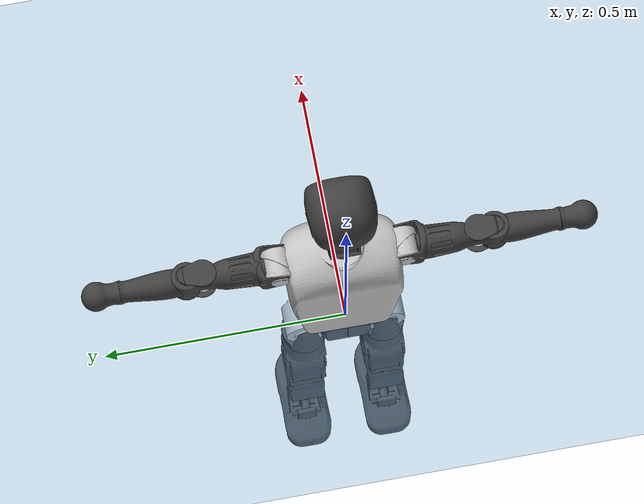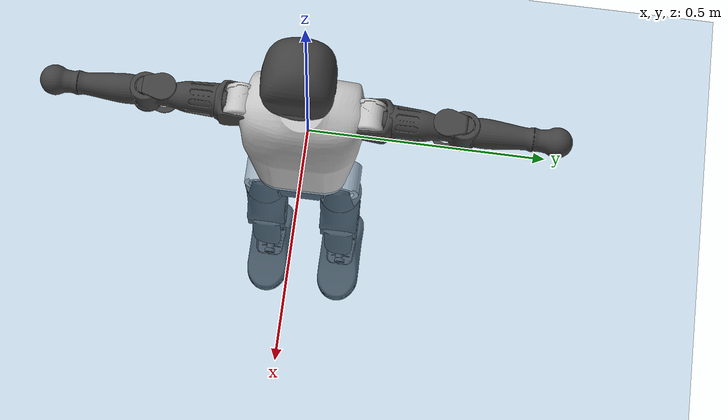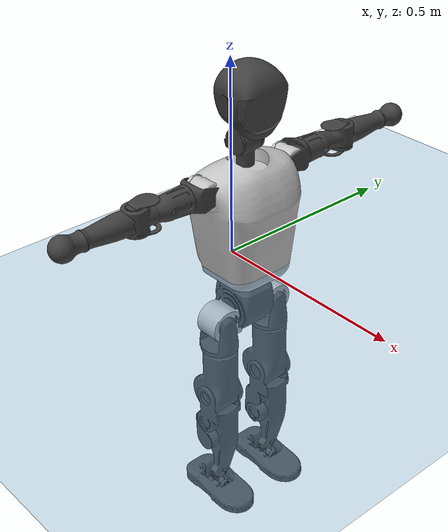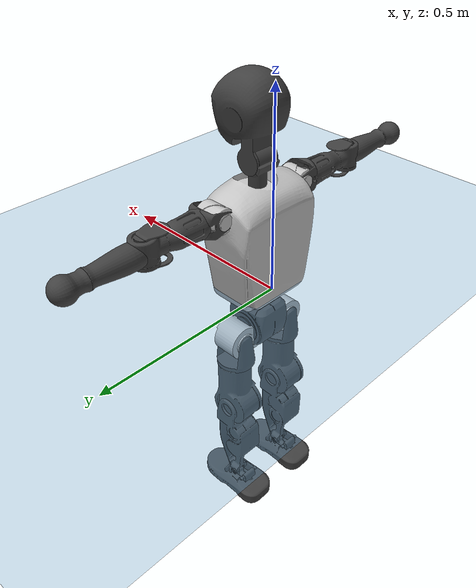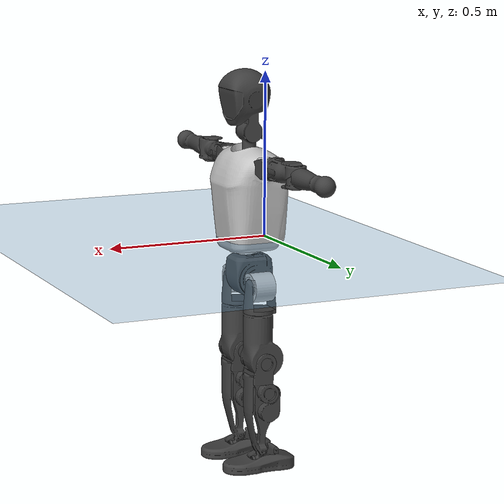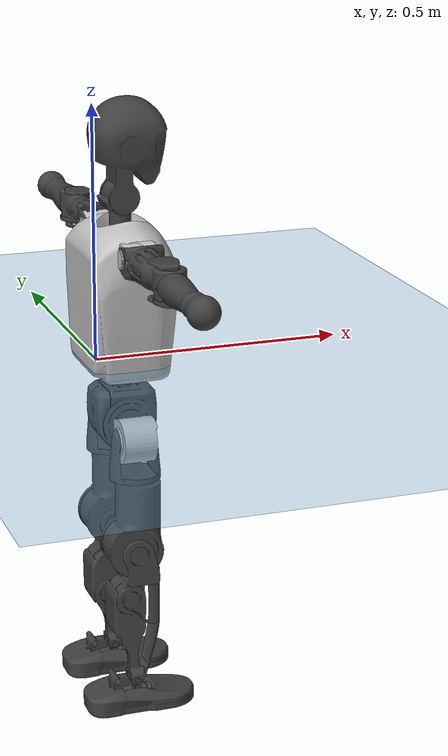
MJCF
<mujoco model="T1">
  <compiler angle="radian" assetdir="assets" balanceinertia="true" inertiafromgeom="false"/>

  <option timestep="0.005" density="1.2" viscosity="2e-05"/>

  <size nkey="1"/>

  <visual>
    <quality shadowsize="8192"/>
    <map shadowclip="0.5"/>
  </visual>

  <default>
    <default class="/">
      <joint armature="0.01" damping="0.01" frictionloss="0.1"/>
      <geom contype="0" conaffinity="0" group="1" solref="-1000 -80"/>
      <site size="0.01 0.005 0.005" group="5"/>
      <general forcelimited="true" biastype="affine" gainprm="25" biasprm="0 -25 -0.6"/>
      <default class="t1">
        <geom rgba="0.25 0.25 0.25 1"/>
        <default class="visual">
          <geom type="mesh" group="2"/>
        </default>
        <default class="collision">
          <geom group="3"/>
        </default>
        <default class="foot">
          <geom size="0.1115 0.05 0.015" type="box" condim="6" group="4" priority="1" solimp="0.015 1 0.015"/>
        </default>
        <default class="reward_collision_sphere">
          <geom group="5" rgba="1 0 0 1"/>
        </default>
      </default>
    </default>
  </default>

  <asset>
    <texture type="skybox" colorspace="auto" name="//unnamed_texture_0" builtin="gradient" rgb1="0.95 0.95 0.95" rgb2="0.95 0.95 0.95" width="100" height="600"/>
    <texture type="2d" colorspace="auto" name="texplane" builtin="checker" rgb1="0.345 0.575 0.748" rgb2="0.345 0.575 0.748" markrgb="1 1 1" width="512" height="512"/>
    <material name="MatPlane" class="/" texture="texplane" texuniform="true" texrepeat="2 2" specular="0.9"/>
    <mesh name="Trunk" class="/" file="Trunk.stl"/>
    <mesh name="H1" class="/" file="H1.stl"/>
    <mesh name="H2" class="/" file="H2.stl"/>
    <mesh name="AL1" class="/" file="AL1.stl"/>
    <mesh name="AL2" class="/" file="AL2.stl"/>
    <mesh name="AL3" class="/" file="AL3.stl"/>
    <mesh name="left_hand_link" class="/" file="left_hand_link.stl"/>
    <mesh name="AR1" class="/" file="AR1.stl"/>
    <mesh name="AR2" class="/" file="AR2.stl"/>
    <mesh name="AR3" class="/" file="AR3.stl"/>
    <mesh name="right_hand_link" class="/" file="right_hand_link.stl"/>
    <mesh name="Waist" class="/" file="Waist.stl"/>
    <mesh name="Hip_Pitch_Left" class="/" file="Hip_Pitch_Left.stl"/>
    <mesh name="Hip_Roll_Left" class="/" file="Hip_Roll_Left.stl"/>
    <mesh name="Hip_Yaw_Left" class="/" file="Hip_Yaw_Left.stl"/>
    <mesh name="Shank_Left" class="/" file="Shank_Left.stl"/>
    <mesh name="Ankle_Cross_Left" class="/" file="Ankle_Cross_Left.stl"/>
    <mesh name="left_foot_link" class="/" file="left_foot_link.stl"/>
    <mesh name="Hip_Pitch_Right" class="/" file="Hip_Pitch_Right.stl"/>
    <mesh name="Hip_Roll_Right" class="/" file="Hip_Roll_Right.stl"/>
    <mesh name="Hip_Yaw_Right" class="/" file="Hip_Yaw_Right.stl"/>
    <mesh name="Shank_Right" class="/" file="Shank_Right.stl"/>
    <mesh name="Ankle_Cross_Right" class="/" file="Ankle_Cross_Right.stl"/>
    <mesh name="right_foot_link" class="/" file="right_foot_link.stl"/>
  </asset>

  <worldbody>
    <geom name="floor" class="/" size="100 100 0.125" type="plane" group="0" material="MatPlane"/>
    <light name="toplight_shadow" class="/" pos="0 0 5" dir="0.0990148 0.0990148 -0.990148" type="directional" ambient="0.04 0.04 0.04" diffuse="0.55 0.55 0.55" specular="0.12 0.12 0.12"/>
    <light name="toplight_fill" class="/" pos="0 0 5" dir="0.0990148 0.0990148 -0.990148" type="directional" castshadow="false" ambient="0.04 0.04 0.04" diffuse="0.3 0.3 0.3" specular="0.08 0.08 0.08"/>
    <body name="trunk" childclass="t1" pos="6.77047e-05 -0.00100834 0.00213789" quat="1 2.14163e-05 -2.80791e-06 -0.000121476">
      <inertial pos="0.0464208 -0.00283927 0.111204" quat="0.999919 -0.00114271 -0.0114472 -0.00547365" mass="8.16858" diaginertia="0.0368342 0.0215323 0.0739829"/>
      <joint name="//unnamed_joint_0" type="free" armature="0" damping="0" frictionloss="0"/>
      <geom name="//unnamed_geom_1" class="visual" rgba="0.76 0.76 0.76 1" mesh="Trunk"/>
      <geom name="//unnamed_geom_2" class="collision" size="0.0666125 0.0888167 0.133225" pos="0.0498712 0 0.126874" type="box"/>
      <geom name="//unnamed_geom_3" class="reward_collision_sphere" size="0.102139" pos="0.0498712 0 0.105728"/>
      <geom name="//unnamed_geom_4" class="reward_collision_sphere" size="0.0133225" pos="0.0498712 0.0659628 0"/>
      <geom name="//unnamed_geom_5" class="reward_collision_sphere" size="0.0133225" pos="0.0498712 -0.0659628 0"/>
      <geom name="//unnamed_geom_6" class="reward_collision_sphere" size="0.0133225" pos="0.0498712 0.0830356 0.19031"/>
      <geom name="//unnamed_geom_7" class="reward_collision_sphere" size="0.0133225" pos="0.0498712 -0.0830356 0.19031"/>
      <site name="imu" pos="-0.000436343 0.0128716 0.000898131" size="0.00888167"/>
      <camera name="track" pos="0 -1.55207 0" quat="0.707107 0.707107 0 0" mode="trackcom"/>
      <camera name="ego_camera" pos="0.101405 0 0.444058" quat="-0.5 -0.5 0.5 0.5"/>
      <body name="H1" pos="0.0516749 -0.00161323 0.257222" quat="0.999999 0.00111871 0.000498404 -0.000152558">
        <inertial pos="-0.00170028 -0.000171653 0.0605458" quat="0.763531 -0.0155659 -0.00100308 0.645583" mass="0.304336" diaginertia="9.60341e-05 6.3913e-05 0.000202708"/>
        <joint name="AAHead_yaw" pos="0 0 0" axis="0.00226329 -0.00154349 0.999996" range="-1.57278 1.62365" armature="0.00868158" damping="0" frictionloss="0.0824523"/>
        <geom name="//unnamed_geom_8" class="visual" mesh="H1"/>
        <body name="H2" pos="-0.000248116 0.000263577 0.0626889" quat="0.999999 0.000519854 0.000984347 0.000682678">
          <inertial pos="0.00548435 0.00178016 0.106276" quat="0.988508 0.102162 -0.0733516 -0.0838668" mass="0.441494" diaginertia="0.000807205 0.000540708 0.00223767"/>
          <joint name="Head_pitch" pos="0 0 0" axis="0.00984408 -0.999951 -0.00109055" range="-1.24425 0.357458" armature="0.00917277" damping="0.00472442" frictionloss="0.0911212"/>
          <geom name="//unnamed_geom_9" class="visual" mesh="H2"/>
          <geom name="//unnamed_geom_10" class="collision" size="0.0710534" pos="0.00831187 0 0.116301"/>
          <geom name="//unnamed_geom_11" class="reward_collision_sphere" size="0.079935" pos="0.0166237 0 0.105728"/>
        </body>
      </body>
      <body name="AL1" pos="0.0494708 0.0845456 0.23033" quat="1 5.01363e-05 0.000449813 -0.000330533">
        <inertial pos="-0.00144047 0.0335937 0.000124146" quat="0.506269 0.504494 -0.494506 0.494613" mass="0.362832" diaginertia="0.00052641 0.000353932 0.00037475"/>
        <joint name="Left_Shoulder_Pitch" pos="0 0 0" axis="-0.00185036 0.999975 -0.0068162" range="-3.25321 1.21365" armature="0.00801298" damping="0.00341319" frictionloss="0.0878363"/>
        <geom name="//unnamed_geom_12" class="visual" rgba="0.76 0.76 0.76 1" mesh="AL1"/>
        <body name="AL2" pos="0.00170051 0.0383082 0.0001375" quat="0.999999 -0.00048552 -0.000441205 -0.00111152">
          <inertial pos="0.00593206 0.0301998 -0.000340721" quat="0.490902 0.509024 -0.487147 0.512442" mass="0.107665" diaginertia="0.000153124 9.39846e-05 0.000223011"/>
          <joint name="Left_Shoulder_Roll" pos="0 0 0" axis="-0.999999 0.000842191 0.000962657" range="-1.57448 1.76075" armature="0.00960852" damping="0.0172762" frictionloss="0.0909539"/>
          <geom name="//unnamed_geom_13" class="visual" mesh="AL2"/>
          <body name="AL3" pos="-0.000262884 0.0472536 0.000600396" quat="0.999999 0.000447664 -0.00115544 0.000389775">
            <inertial pos="0.00238408 0.0652286 -8.76491e-05" quat="0.715094 0.699012 -0.00239245 0.00404663" mass="0.739031" diaginertia="0.00533544 0.0038423 0.000851446"/>
            <joint name="Left_Elbow_Pitch" pos="0 0 0" axis="0.00409816 -0.99999 0.00188557" range="-2.28083 2.32252" armature="0.00994838" damping="0.00927442" frictionloss="0.100769"/>
            <geom name="//unnamed_geom_14" class="visual" mesh="AL3"/>
            <geom name="//unnamed_geom_15" class="collision" size="0.026645 0.0666125" pos="0 0.0388017 0" quat="0.707105 0.707108 0 0" type="cylinder"/>
            <geom name="//unnamed_geom_16" class="reward_collision_sphere" size="0.031974"/>
            <body name="left_hand_link" pos="-0.00034043 0.114123 -0.000336209" quat="0.999999 0.000868645 0.000692462 -0.000723031">
              <inertial pos="0.00128386 0.087059 0.000844977" quat="0.710866 0.70332 -2.40323e-05 -0.00337774" mass="0.226573" diaginertia="0.00333269 0.00234223 0.000273846"/>
              <joint name="Left_Elbow_Yaw" pos="0 0 0" axis="0.00868948 -0.0115238 0.999896" range="-2.45236 0.0545286" armature="0.00790034" damping="0.000257413" frictionloss="0.0917993"/>
              <geom name="//unnamed_geom_17" class="visual" mesh="left_hand_link"/>
              <geom name="//unnamed_geom_18" class="collision" size="0.026645 0.0777146" pos="0 0.100884 0" quat="0.707105 0.707108 0 0" type="cylinder"/>
              <geom name="//unnamed_geom_19" class="reward_collision_sphere" size="0.0444084"/>
              <geom name="//unnamed_geom_20" class="reward_collision_sphere" size="0.0310858" pos="0 0.0853637 0"/>
              <geom name="//unnamed_geom_21" class="reward_collision_sphere" size="0.0310858" pos="0 0.166847 0"/>
            </body>
          </body>
        </body>
      </body>
      <body name="AR1" pos="0.0483711 -0.0786494 0.228415" quat="1 9.51065e-05 0.000670104 0.000189501">
        <inertial pos="-0.00152257 -0.037718 0.000583638" quat="0.507722 0.493694 -0.504886 0.493534" mass="0.375085" diaginertia="0.000538058 0.00036104 0.000383604"/>
        <joint name="Right_Shoulder_Pitch" pos="0 0 0" axis="-0.0111786 -0.999893 0.00943158" range="-1.22682 3.36343" armature="0.00934427" damping="0.00810348" frictionloss="0.0767596"/>
        <geom name="//unnamed_geom_22" class="visual" rgba="0.76 0.76 0.76 1" mesh="AR1"/>
        <body name="AR2" pos="0.00221404 -0.0376489 -0.00104911" quat="1 -3.60611e-05 0.000106191 -0.000111858">
          <inertial pos="0.00535493 -0.0297621 -0.000451323" quat="0.511522 0.490806 -0.510288 0.486889" mass="0.119783" diaginertia="0.000164954 9.96489e-05 0.000240126"/>
          <joint name="Right_Shoulder_Roll" pos="0 0 0" axis="-0.999998 -0.000574917 0.00199534" range="-1.7384 1.61249" armature="0.00927962" damping="0" frictionloss="0.0993195"/>
          <geom name="//unnamed_geom_23" class="visual" mesh="AR2"/>
          <body name="AR3" pos="-0.00288564 -0.0484536 -0.001836" quat="1 -0.000237696 4.52997e-05 -3.63247e-05">
            <inertial pos="-0.00012696 -0.064139 0.000612581" quat="0.707523 0.70669 -0.00035871 0.000146811" mass="0.757624" diaginertia="0.00526916 0.00372555 0.000849595"/>
            <joint name="Right_Elbow_Pitch" pos="0 0 0" axis="0.00233367 0.999997 -0.000616488" range="-2.31581 2.2184" armature="0.00872862" damping="0.0159412" frictionloss="0.0902738"/>
            <geom name="//unnamed_geom_24" class="visual" mesh="AR3"/>
            <geom name="//unnamed_geom_25" class="collision" size="0.026645 0.0666125" pos="0 -0.0388017 0" quat="0.707105 0.707108 0 0" type="cylinder"/>
            <geom name="//unnamed_geom_26" class="reward_collision_sphere" size="0.031974"/>
            <body name="right_hand_link" pos="-0.00106562 -0.113586 0.00119916" quat="1 -0.000291197 0.000247344 -1.64209e-05">
              <inertial pos="5.38991e-05 -0.0846321 -0.00160296" quat="0.711056 0.703127 0.00107145 -0.00326167" mass="0.217495" diaginertia="0.00315423 0.00226901 0.000280199"/>
              <joint name="Right_Elbow_Yaw" pos="0 0 0" axis="-0.0118393 -0.00524064 0.999916" stiffness="0.000959652" range="-0.00888019 2.48849" armature="0.00910968" damping="0.00722222" frictionloss="0.0891672"/>
              <geom name="//unnamed_geom_27" class="visual" mesh="right_hand_link"/>
              <geom name="//unnamed_geom_28" class="collision" size="0.026645 0.0777146" pos="0 -0.100884 0" quat="0.707105 0.707108 0 0" type="cylinder"/>
              <geom name="//unnamed_geom_29" class="reward_collision_sphere" size="0.0444084"/>
              <geom name="//unnamed_geom_30" class="reward_collision_sphere" size="0.0310858" pos="0 -0.0853637 0"/>
              <geom name="//unnamed_geom_31" class="reward_collision_sphere" size="0.0310858" pos="0 -0.166847 0"/>
            </body>
          </body>
        </body>
      </body>
      <body name="Waist" pos="0.0496593 -0.00264344 -0.122934" quat="0.999999 -0.000677028 0.000695455 0.000816003">
        <inertial pos="0.00086511 -0.00332714 0.0067974" quat="0.983639 0.000519003 -0.180134 0.00242423" mass="1.79597" diaginertia="0.00207311 0.00144133 0.00609496"/>
        <joint name="Waist" pos="0 0 0" axis="0.00626038 -0.0058658 0.999963" stiffness="0.00169948" range="-1.58119 1.56355" armature="0.00848956" damping="0" frictionloss="0.0768385"/>
        <geom name="//unnamed_geom_32" class="visual" mesh="Waist"/>
        <body name="Hip_Pitch_Left" pos="0.00158962 0.0800287 0.00215315" quat="0.999999 0.0011509 2.49736e-06 -0.000885189">
          <inertial pos="0.0011847 -0.00507848 -0.0191989" quat="0.975104 0.221433 0.011713 0.00162576" mass="0.712997" diaginertia="0.000722116 0.000422377 0.0016401"/>
          <joint name="Left_Hip_Pitch" pos="0 0 0" axis="0.00146293 0.999975 -0.00688896" range="-1.7818 1.55648" armature="0.00932193" damping="0.0111006" frictionloss="0.0875516"/>
          <geom name="//unnamed_geom_33" class="visual" rgba="0.76 0.76 0.76 1" mesh="Hip_Pitch_Left"/>
          <body name="Hip_Roll_Left" pos="0.0026094 0.000991167 -0.0201652" quat="0.999999 0.00086048 -0.0009755 0.000193578">
            <inertial pos="-0.00147744 -0.00264451 -0.0578796" quat="0.704349 -0.0165598 0.00124829 0.70966" mass="0.267496" diaginertia="0.000661579 0.000417284 0.00067751"/>
            <joint name="Left_Hip_Roll" pos="0 0 0" axis="-0.999928 -0.0119101 -0.00133916" range="-1.60857 0.255303" armature="0.00998094" damping="0.00613952" frictionloss="0.0885446"/>
            <geom name="//unnamed_geom_34" class="visual" mesh="Hip_Roll_Left"/>
            <geom name="//unnamed_geom_35" class="reward_collision_sphere" size="0.0488492"/>
            <body name="Hip_Yaw_Left" pos="0.0024296 -0.000143676 -0.0847249" quat="0.999999 0.000704369 -0.00123946 -0.000535754">
              <inertial pos="-0.00665109 0.000235966 -0.0952144" quat="0.698391 -0.0352554 -0.0278482 0.714305" mass="1.53082" diaginertia="0.0101172 0.00722735 0.00356408"/>
              <joint name="Left_Hip_Yaw" pos="0 0 0" axis="-0.000548015 0.000329272 -1" range="-1.02667 0.952857" armature="0.00856758" damping="0.0155145" frictionloss="0.0905478"/>
              <geom name="//unnamed_geom_36" class="visual" mesh="Hip_Yaw_Left"/>
              <geom name="//unnamed_geom_37" class="collision" size="0.0444084 0.0710534" type="cylinder"/>
              <body name="Shank_Left" pos="-0.0101365 0.000985638 -0.145083" quat="1 5.47821e-05 -1.19384e-05 -4.56176e-05">
                <inertial pos="-0.00248939 -0.00239516 -0.131394" quat="0.99763 0.00434448 -0.0275791 0.0628853" mass="1.19065" diaginertia="0.0137109 0.00939539 0.00239079"/>
                <joint name="Left_Knee_Pitch" pos="0 0 0" axis="-0.00306546 0.999992 -0.00273075" range="0.0162332 2.34302" armature="0.00915103" damping="0.0081056" frictionloss="0.0873011"/>
                <geom name="//unnamed_geom_38" class="visual" mesh="Shank_Left"/>
                <geom name="//unnamed_geom_39" class="collision" size="0.0444084 0.0666125" pos="0 0 -0.126874" type="cylinder"/>
                <geom name="//unnamed_geom_40" class="reward_collision_sphere" size="0.0577309"/>
                <body name="Ankle_Cross_Left" pos="0.000114691 -0.000637245 -0.29398" quat="1 -0.000303816 0.000274244 -0.00041643">
                  <inertial pos="-0.000968919 -0.000777489 -0.00921605" quat="0.442487 0.549759 0.551729 0.444483" mass="0.0532285" diaginertia="1.16386e-05 7.27755e-06 1.51035e-05"/>
                  <joint name="Left_Ankle_Pitch" pos="0 0 0" axis="-0.000166214 0.999987 -0.00500638" range="-0.856299 0.336189" armature="0.00916033" damping="0.0122685" frictionloss="0.0803418"/>
                  <geom name="//unnamed_geom_41" class="visual" mesh="Ankle_Cross_Left"/>
                  <body name="left_foot_link" pos="-0.00045347 0.00270972 -0.01269" quat="1 0.000282099 1.41087e-06 -0.000498282">
                    <inertial pos="-0.00070729 0.0023796 -0.0100395" quat="-0.00329423 0.622545 -0.00610023 0.782553" mass="0.458504" diaginertia="0.00109236 0.000670884 0.00286922"/>
                    <joint name="Left_Ankle_Roll" pos="0 0 0" axis="-0.999949 -0.00317651 -0.00955512" range="-0.430567 0.494852" armature="0.00993518" damping="0.00991472" frictionloss="0.0863767"/>
                    <geom name="//unnamed_geom_42" class="visual" mesh="left_foot_link"/>
                    <geom name="left_foot" class="foot" size="0.108873 0.0499406 0.0140615" pos="0.00831187 0 -0.0158592"/>
                    <geom name="//unnamed_geom_44" class="reward_collision_sphere" size="0.0461847" pos="0.00831187 0 -0.0158592"/>
                    <geom name="//unnamed_geom_45" class="reward_collision_sphere" size="0.026645" pos="0.0789628 -0.0178488 -0.0158592"/>
                    <geom name="//unnamed_geom_46" class="reward_collision_sphere" size="0.026645" pos="-0.0581831 -0.0178488 -0.0158592"/>
                    <site name="left_foot" class="foot" pos="0.00831187 0 -0.0158592" size="0.00888167"/>
                  </body>
                </body>
              </body>
            </body>
          </body>
        </body>
        <body name="Hip_Pitch_Right" pos="0.00205679 -0.0831522 -0.00205826" quat="1 5.21804e-05 -0.000149967 0.000127763">
          <inertial pos="-0.00216799 0.0052686 -0.0188866" quat="0.973066 -0.229882 0.0172166 -0.00058521" mass="0.713014" diaginertia="0.00071258 0.000411319 0.00164284"/>
          <joint name="Right_Hip_Pitch" pos="0 0 0" axis="-0.00252965 -0.999997 -0.000350101" range="-1.59347 1.77446" armature="0.0100165" damping="0.00871386" frictionloss="0.0867015"/>
          <geom name="//unnamed_geom_47" class="visual" rgba="0.76 0.76 0.76 1" mesh="Hip_Pitch_Right"/>
          <body name="Hip_Roll_Right" pos="-0.000171234 -0.00141472 -0.0194154" quat="1 -0.000313747 -3.41962e-05 0.00015597">
            <inertial pos="0.00157143 -0.00319368 -0.0587571" quat="0.707125 -0.0191664 -0.00664872 0.706797" mass="0.257887" diaginertia="0.000664131 0.000416145 0.000656796"/>
            <joint name="Right_Hip_Roll" pos="0 0 0" axis="-0.999993 0.00309791 -0.00225446" range="-0.200032 1.57108" armature="0.00888007" damping="0.00305051" frictionloss="0.0790668"/>
            <geom name="//unnamed_geom_48" class="visual" mesh="Hip_Roll_Right"/>
            <geom name="//unnamed_geom_49" class="reward_collision_sphere" size="0.0488492"/>
            <body name="Hip_Yaw_Right" pos="0.00286289 -0.00112553 -0.0856521" quat="0.999999 -0.000608529 0.000190922 -0.001082">
              <inertial pos="-0.00495989 -0.00305841 -0.0942399" quat="0.713694 -0.0334766 -0.0343478 0.698813" mass="1.49028" diaginertia="0.00992821 0.00692788 0.0033566"/>
              <joint name="Right_Hip_Yaw" pos="0 0 0" axis="0.0110639 -0.00174884 -0.999937" range="-1.02567 1.05326" armature="0.00934082" damping="0.00728778" frictionloss="0.0893851"/>
              <geom name="//unnamed_geom_50" class="visual" mesh="Hip_Yaw_Right"/>
              <geom name="//unnamed_geom_51" class="collision" size="0.0444084 0.0710534" type="cylinder"/>
              <body name="Shank_Right" pos="-0.011189 -0.000820309 -0.140466" quat="1 0.000330016 -0.000113286 2.51665e-05">
                <inertial pos="-0.00468163 0.000841896 -0.130039" quat="0.999279 0.0045382 -0.0221724 -0.0304939" mass="1.20953" diaginertia="0.0131168 0.00960278 0.00251997"/>
                <joint name="Right_Knee_Pitch" pos="0 0 0" axis="-0.000747765 -1 -0.000251657" range="-2.32929 -0.00597765" armature="0.00895436" damping="0.00403807" frictionloss="0.0912262"/>
                <geom name="//unnamed_geom_52" class="visual" mesh="Shank_Right"/>
                <geom name="//unnamed_geom_53" class="collision" size="0.0444084 0.0666125" pos="0 0 -0.126874" type="cylinder"/>
                <geom name="//unnamed_geom_54" class="reward_collision_sphere" size="0.0577309"/>
                <body name="Ankle_Cross_Right" pos="0.000950925 -0.00116037 -0.29638" quat="0.999999 -0.000788675 0.000520407 -0.000648787">
                  <inertial pos="-0.0019412 0.00054544 -0.011143" quat="0.435707 0.544843 0.559314 0.447743" mass="0.0492152" diaginertia="1.07642e-05 7.18168e-06 1.40062e-05"/>
                  <joint name="Right_Ankle_Pitch" pos="0 0 0" axis="0.0113621 -0.999922 0.00522856" range="-0.311565 0.860409" armature="0.00892671" damping="0" frictionloss="0.0785376"/>
                  <geom name="//unnamed_geom_55" class="visual" mesh="Ankle_Cross_Right"/>
                  <body name="right_foot_link" pos="-0.000354017 -0.00110059 -0.0128344" quat="1 3.53447e-05 -0.00010793 7.26355e-05">
                    <inertial pos="-0.00261901 -0.00223371 -0.00982161" quat="0.00875762 0.618837 -0.0022578 0.785467" mass="0.481638" diaginertia="0.00108221 0.000679737 0.00286016"/>
                    <joint name="Right_Ankle_Roll" pos="0 0 0" axis="-0.999998 -0.000101703 0.00180092" range="-0.41797 0.441867" armature="0.00913598" damping="0.0212561" frictionloss="0.0912588"/>
                    <geom name="//unnamed_geom_56" class="visual" mesh="right_foot_link"/>
                    <geom name="right_foot" class="foot" size="0.0969326 0.0458376 0.0130451" pos="0.00831187 0 -0.0158592"/>
                    <geom name="//unnamed_geom_58" class="reward_collision_sphere" size="0.0355267"/>
                    <geom name="//unnamed_geom_59" class="reward_collision_sphere" size="0.026645" pos="0.00831187 0 -0.0158592"/>
                    <geom name="//unnamed_geom_60" class="reward_collision_sphere" size="0.026645" pos="0.0789628 0.0178488 -0.0158592"/>
                    <geom name="//unnamed_geom_61" class="reward_collision_sphere" size="0.026645" pos="-0.0581831 0.0178488 -0.0158592"/>
                    <site name="right_foot" class="foot" pos="0.00831187 0 -0.0158592" size="0.00888167"/>
                  </body>
                </body>
              </body>
            </body>
          </body>
        </body>
      </body>
    </body>
  </worldbody>

  <contact>
    <pair class="/" geom1="floor" geom2="left_foot" name="//unnamed_contact_0"/>
    <pair class="/" geom1="floor" geom2="right_foot" name="//unnamed_contact_1"/>
  </contact>

  <actuator>
    <general name="AAHead_yaw" class="/" joint="AAHead_yaw" forcerange="-6.63585 6.63585" gainprm="21.7763" biasprm="0 -21.7763 -0.502054"/>
    <general name="Head_pitch" class="/" joint="Head_pitch" forcerange="-6.67598 6.67598" gainprm="21.7763" biasprm="0 -21.7763 -0.502054"/>
    <general name="Left_Shoulder_Pitch" class="/" joint="Left_Shoulder_Pitch" forcerange="-16.0132 16.0132" gainprm="21.7763" biasprm="0 -21.7763 -0.502054"/>
    <general name="Left_Shoulder_Roll" class="/" joint="Left_Shoulder_Roll" forcerange="-15.7497 15.7497" gainprm="21.7763" biasprm="0 -21.7763 -0.502054"/>
    <general name="Left_Elbow_Pitch" class="/" joint="Left_Elbow_Pitch" forcerange="-17.6305 17.6305" gainprm="21.7763" biasprm="0 -21.7763 -0.502054"/>
    <general name="Left_Elbow_Yaw" class="/" joint="Left_Elbow_Yaw" forcerange="-15.1354 15.1354" gainprm="21.7763" biasprm="0 -21.7763 -0.502054"/>
    <general name="Right_Shoulder_Pitch" class="/" joint="Right_Shoulder_Pitch" forcerange="-14.4496 14.4496" gainprm="21.7763" biasprm="0 -21.7763 -0.502054"/>
    <general name="Right_Shoulder_Roll" class="/" joint="Right_Shoulder_Roll" forcerange="-15.622 15.622" gainprm="21.7763" biasprm="0 -21.7763 -0.502054"/>
    <general name="Right_Elbow_Pitch" class="/" joint="Right_Elbow_Pitch" forcerange="-17.6349 17.6349" gainprm="21.7763" biasprm="0 -21.7763 -0.502054"/>
    <general name="Right_Elbow_Yaw" class="/" joint="Right_Elbow_Yaw" forcerange="-15.8587 15.8587" gainprm="21.7763" biasprm="0 -21.7763 -0.502054"/>
    <general name="Waist" class="/" joint="Waist" forcerange="-27.7374 27.7374" gainprm="21.7763" biasprm="0 -21.7763 -0.502054"/>
    <general name="Left_Hip_Pitch" class="/" joint="Left_Hip_Pitch" forcerange="-40.7855 40.7855" gainprm="21.7763" biasprm="0 -21.7763 -0.502054"/>
    <general name="Left_Hip_Roll" class="/" joint="Left_Hip_Roll" forcerange="-29.281 29.281" gainprm="21.7763" biasprm="0 -21.7763 -0.502054"/>
    <general name="Left_Hip_Yaw" class="/" joint="Left_Hip_Yaw" forcerange="-24.0203 24.0203" gainprm="21.7763" biasprm="0 -21.7763 -0.502054"/>
    <general name="Left_Knee_Pitch" class="/" joint="Left_Knee_Pitch" forcerange="-57.219 57.219" gainprm="21.7763" biasprm="0 -21.7763 -0.502054"/>
    <general name="Left_Ankle_Pitch" class="/" joint="Left_Ankle_Pitch" forcerange="-16.0941 16.0941" gainprm="21.7763" biasprm="0 -21.7763 -0.502054"/>
    <general name="Left_Ankle_Roll" class="/" joint="Left_Ankle_Roll" forcerange="-13.1862 13.1862" gainprm="21.7763" biasprm="0 -21.7763 -0.502054"/>
    <general name="Right_Hip_Pitch" class="/" joint="Right_Hip_Pitch" forcerange="-40.4554 40.4554" gainprm="21.7763" biasprm="0 -21.7763 -0.502054"/>
    <general name="Right_Hip_Roll" class="/" joint="Right_Hip_Roll" forcerange="-25.6594 25.6594" gainprm="21.7763" biasprm="0 -21.7763 -0.502054"/>
    <general name="Right_Hip_Yaw" class="/" joint="Right_Hip_Yaw" forcerange="-25.7943 25.7943" gainprm="21.7763" biasprm="0 -21.7763 -0.502054"/>
    <general name="Right_Knee_Pitch" class="/" joint="Right_Knee_Pitch" forcerange="-58.204 58.204" gainprm="21.7763" biasprm="0 -21.7763 -0.502054"/>
    <general name="Right_Ankle_Pitch" class="/" joint="Right_Ankle_Pitch" forcerange="-18.602 18.602" gainprm="21.7763" biasprm="0 -21.7763 -0.502054"/>
    <general name="Right_Ankle_Roll" class="/" joint="Right_Ankle_Roll" forcerange="-11.9808 11.9808" gainprm="21.7763" biasprm="0 -21.7763 -0.502054"/>
  </actuator>

  <sensor>
    <gyro site="imu" name="imu_angular_velocity"/>
    <velocimeter site="imu" name="imu_linear_velocity"/>
    <framelinvel objtype="site" objname="left_foot" name="left_foot_global_linear_velocity"/>
    <framelinvel objtype="site" objname="right_foot" name="right_foot_global_linear_velocity"/>
  </sensor>

  <keyframe>
    <key name="home" qpos="0 0 0.6385 1 0 0 0 0 0 0 1.4 0 -0.4 0 -1.4 0 0.4 0 -0.4 0 0 0.8 -0.4 0 0.4 0 0 -0.8 0.4 0"/>
  </keyframe>
</mujoco>
